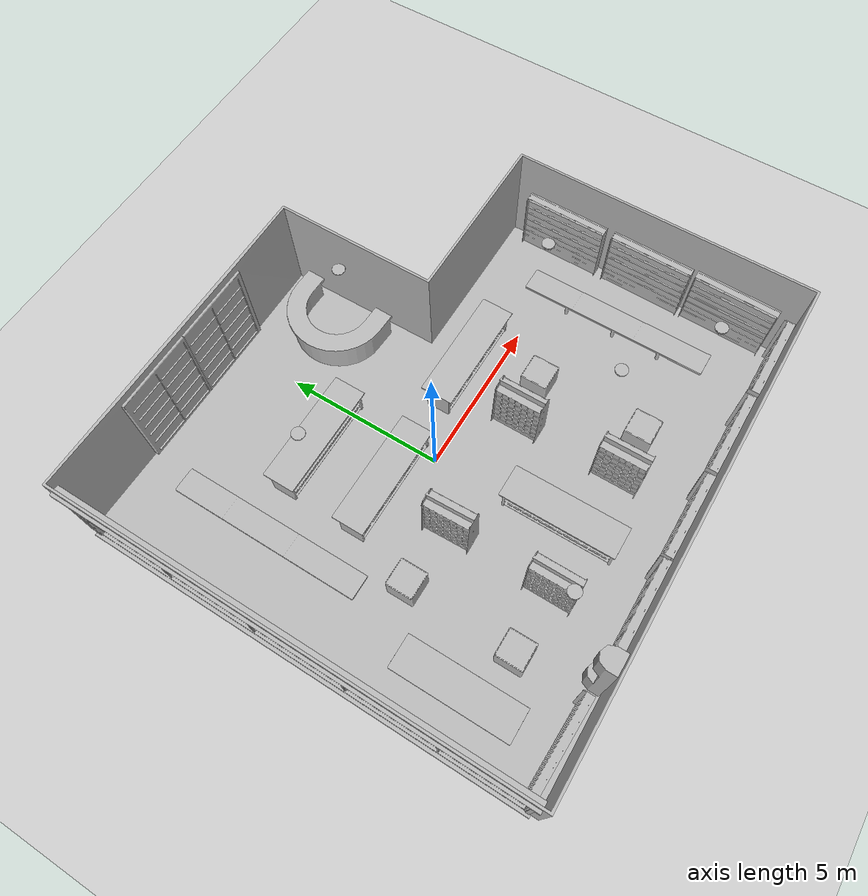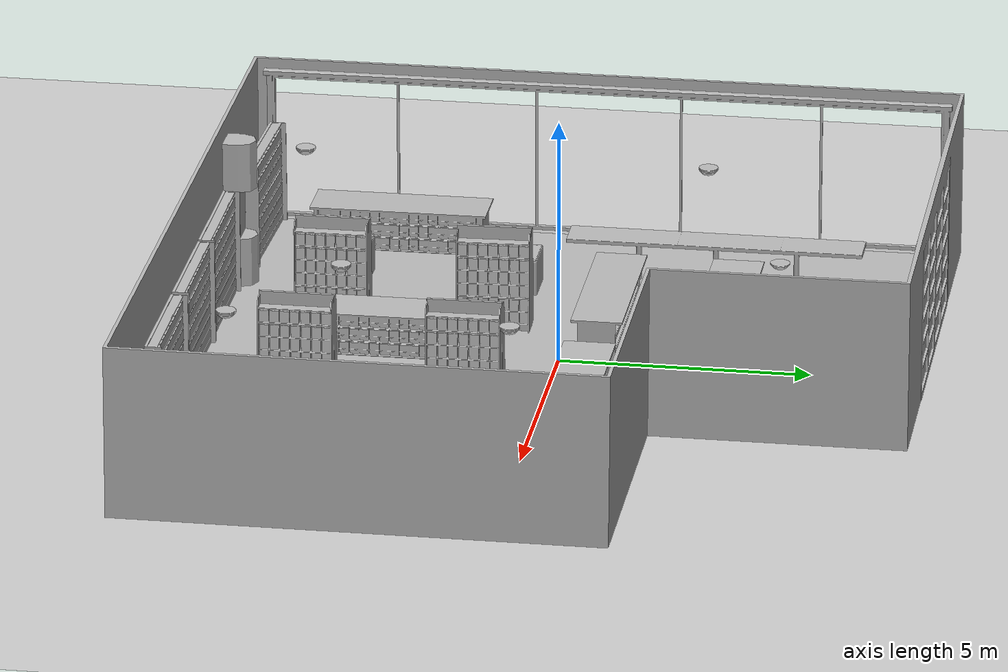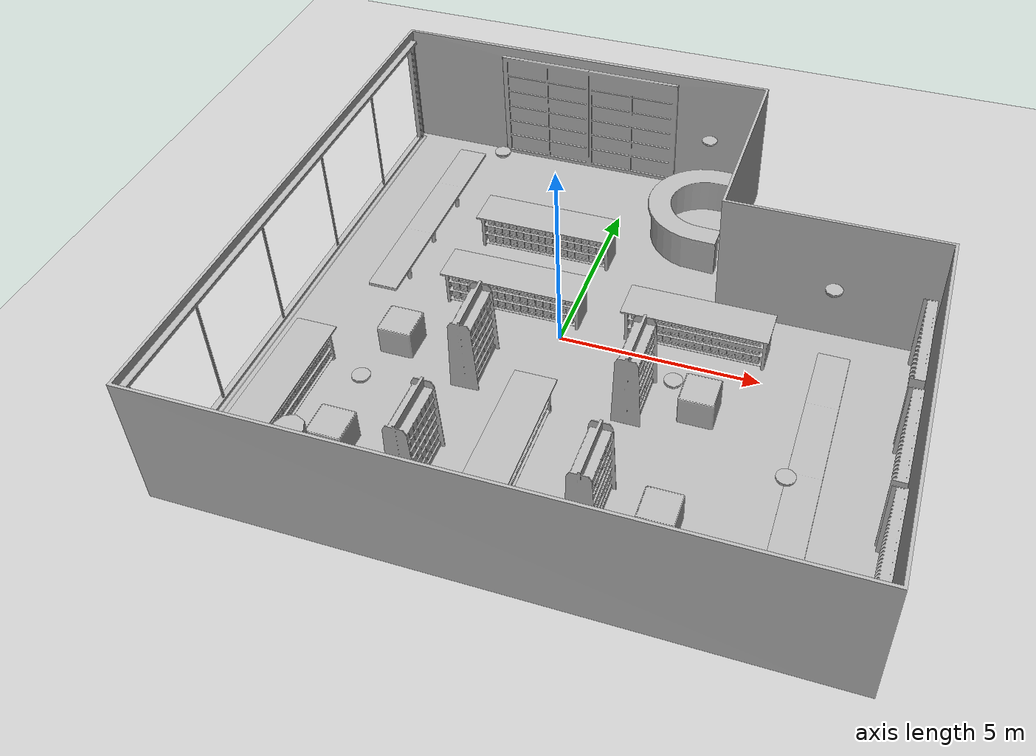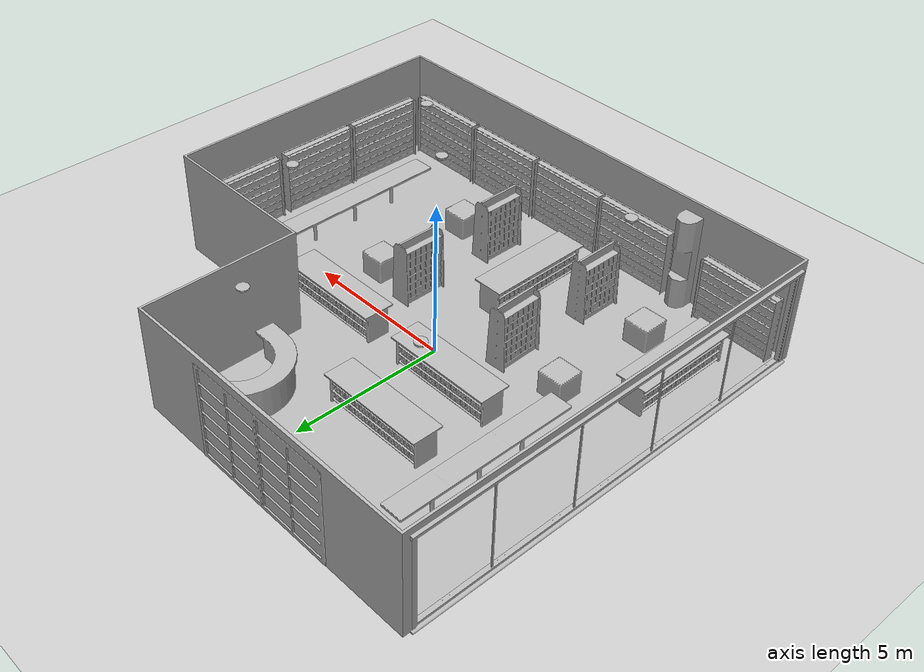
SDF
<sdf version="1.7">
 <world name="default">
  <light name="sun" type="directional">
   <pose>0 0 10 0 -0 0</pose>
   <diffuse>0.8 0.8 0.8 1</diffuse>
   <specular>0.2 0.2 0.2 1</specular>
   <attenuation>
    <range>1000</range>
    <constant>0.9</constant>
    <linear>0.01</linear>
    <quadratic>0.001</quadratic>
   </attenuation>
   <direction>-0.5 0.1 -0.9</direction>
   <spot><inner_angle>0</inner_angle><outer_angle>0</outer_angle><falloff>0</falloff></spot>
  </light>
  <model name="ground_plane">
   <static>1</static>
   <link name="link">
    <collision name="collision">
     <geometry><plane><normal>0 0 1</normal><size>100 100</size></plane></geometry>
     <surface><friction><ode><mu>100</mu><mu2>50</mu2></ode></friction></surface>
    </collision>
    <visual name="visual">
     <cast_shadows>0</cast_shadows>
     <geometry><plane><normal>0 0 1</normal><size>100 100</size></plane></geometry>
     <material>
      <script><uri>file://media/materials/scripts/gazebo.material</uri><name>Gazebo/Grey</name></script>
     </material>
    </visual>
   </link>
  </model>
  <gravity>0 0 -9.8</gravity>
  <magnetic_field>6e-06 2.3e-05 -4.2e-05</magnetic_field>
  <atmosphere type="adiabatic"/>
  <physics type="ode">
   <max_step_size>0.001</max_step_size>
   <real_time_factor>1</real_time_factor>
   <real_time_update_rate>1000</real_time_update_rate>
  </physics>
  <scene><ambient>0.4 0.4 0.4 1</ambient><background>0.7 0.7 0.7 1</background><shadows>1</shadows></scene>
  <audio><device>default</device></audio>
  <spherical_coordinates>
   <surface_model>EARTH_WGS84</surface_model>
   <latitude_deg>0</latitude_deg>
   <longitude_deg>0</longitude_deg>
   <elevation>0</elevation>
   <heading_deg>0</heading_deg>
  </spherical_coordinates>
  <model name="bookstore">
   <frame name="BookshelfA_01_001::__model__" attached_to="BookshelfA_01_001::link">
    <pose relative_to="__model__">1.40515 -1.44974 0.03755 0.00349 -3e-06 0.000696</pose>
   </frame>
   <link name="BookshelfA_01_001::link">
    <inertial>
     <mass>50</mass>
     <inertia><ixx>27.7341</ixx><ixy>0</ixy><ixz>0</ixz><iyy>20.9361</iyy><iyz>0</iyz><izz>11.3596</izz></inertia>
    </inertial>
    <collision name="collision">
     <geometry>
      <mesh>
       <uri>model://aws_robomaker_retail_BookshelfA_01/meshes/aws_BookshelfA_01_collision.DAE</uri>
       <scale>1 1 1</scale>
      </mesh>
     </geometry>
    </collision>
    <visual name="visual">
     <geometry>
      <mesh><uri>model://aws_robomaker_retail_BookshelfA_01/meshes/aws_BookshelfA_01_visual.DAE</uri></mesh>
     </geometry>
     <meta><layer>1</layer></meta>
    </visual>
    <pose relative_to="BookshelfA_01_001::__model__">0 0 0 0 -0 0</pose>
   </link>
   <static>1</static>
   <frame name="BookshelfA_01_002::__model__" attached_to="BookshelfA_01_002::link">
    <pose relative_to="__model__">1.40515 -4.76165 0.003411 0 -0 0</pose>
   </frame>
   <link name="BookshelfA_01_002::link">
    <inertial>
     <mass>50</mass>
     <inertia><ixx>27.7341</ixx><ixy>0</ixy><ixz>0</ixz><iyy>20.9361</iyy><iyz>0</iyz><izz>11.3596</izz></inertia>
    </inertial>
    <collision name="collision">
     <geometry>
      <mesh>
       <uri>model://aws_robomaker_retail_BookshelfA_01/meshes/aws_BookshelfA_01_collision.DAE</uri>
       <scale>1 1 1</scale>
      </mesh>
     </geometry>
    </collision>
    <visual name="visual">
     <geometry>
      <mesh><uri>model://aws_robomaker_retail_BookshelfA_01/meshes/aws_BookshelfA_01_visual.DAE</uri></mesh>
     </geometry>
     <meta><layer>1</layer></meta>
    </visual>
    <pose relative_to="BookshelfA_01_002::__model__">0 0 0 0 -0 0</pose>
   </link>
   <static>1</static>
   <frame name="BookshelfA_01_003::__model__" attached_to="BookshelfA_01_003::link">
    <pose relative_to="__model__">-2.55449 -1.48746 0.006337 0.001313 -0.001987 0.031824</pose>
   </frame>
   <link name="BookshelfA_01_003::link">
    <inertial>
     <mass>50</mass>
     <inertia><ixx>27.7341</ixx><ixy>0</ixy><ixz>0</ixz><iyy>20.9361</iyy><iyz>0</iyz><izz>11.3596</izz></inertia>
    </inertial>
    <collision name="collision">
     <geometry>
      <mesh>
       <uri>model://aws_robomaker_retail_BookshelfA_01/meshes/aws_BookshelfA_01_collision.DAE</uri>
       <scale>1 1 1</scale>
      </mesh>
     </geometry>
    </collision>
    <visual name="visual">
     <geometry>
      <mesh><uri>model://aws_robomaker_retail_BookshelfA_01/meshes/aws_BookshelfA_01_visual.DAE</uri></mesh>
     </geometry>
     <meta><layer>1</layer></meta>
    </visual>
    <pose relative_to="BookshelfA_01_003::__model__">0 0 0 0 -0 0</pose>
   </link>
   <static>1</static>
   <frame name="BookshelfA_01_004::__model__" attached_to="BookshelfA_01_004::link">
    <pose relative_to="__model__">-2.60858 -4.76165 0.003411 0 -0 0</pose>
   </frame>
   <link name="BookshelfA_01_004::link">
    <inertial>
     <mass>50</mass>
     <inertia><ixx>27.7341</ixx><ixy>0</ixy><ixz>0</ixz><iyy>20.9361</iyy><iyz>0</iyz><izz>11.3596</izz></inertia>
    </inertial>
    <collision name="collision">
     <geometry>
      <mesh>
       <uri>model://aws_robomaker_retail_BookshelfA_01/meshes/aws_BookshelfA_01_collision.DAE</uri>
       <scale>1 1 1</scale>
      </mesh>
     </geometry>
    </collision>
    <visual name="visual">
     <geometry>
      <mesh><uri>model://aws_robomaker_retail_BookshelfA_01/meshes/aws_BookshelfA_01_visual.DAE</uri></mesh>
     </geometry>
     <meta><layer>1</layer></meta>
    </visual>
    <pose relative_to="BookshelfA_01_004::__model__">0 0 0 0 -0 0</pose>
   </link>
   <static>1</static>
   <frame name="BookshelfB_01_001::__model__" attached_to="BookshelfB_01_001::link">
    <pose relative_to="__model__">-6.18968 -6.78565 -0.008942 0.003533 0.000121 -0.032073</pose>
   </frame>
   <link name="BookshelfB_01_001::link">
    <inertial>
     <mass>50</mass>
     <inertia><ixx>19.8742</ixx><ixy>0</ixy><ixz>0</ixz><iyy>49.1263</iyy><iyz>0</iyz><izz>30.2231</izz></inertia>
    </inertial>
    <collision name="collision">
     <geometry>
      <mesh>
       <uri>model://aws_robomaker_retail_BookshelfB_01/meshes/aws_BookshelfB_01_collision.DAE</uri>
       <scale>1 1 1</scale>
      </mesh>
     </geometry>
    </collision>
    <visual name="visual">
     <geometry>
      <mesh><uri>model://aws_robomaker_retail_BookshelfB_01/meshes/aws_BookshelfB_01_visual.DAE</uri></mesh>
     </geometry>
     <meta><layer>1</layer></meta>
    </visual>
    <pose relative_to="BookshelfB_01_001::__model__">0 0 0 0 -0 0</pose>
   </link>
   <static>1</static>
   <frame name="BookshelfB_01_002::__model__" attached_to="BookshelfB_01_002::link">
    <pose relative_to="__model__">-2.20941 -6.97146 0.017074 -0.000128 -0.000252 0.000364</pose>
   </frame>
   <link name="BookshelfB_01_002::link">
    <inertial>
     <mass>50</mass>
     <inertia><ixx>19.8742</ixx><ixy>0</ixy><ixz>0</ixz><iyy>49.1263</iyy><iyz>0</iyz><izz>30.2231</izz></inertia>
    </inertial>
    <collision name="collision">
     <geometry>
      <mesh>
       <uri>model://aws_robomaker_retail_BookshelfB_01/meshes/aws_BookshelfB_01_collision.DAE</uri>
       <scale>1 1 1</scale>
      </mesh>
     </geometry>
    </collision>
    <visual name="visual">
     <geometry>
      <mesh><uri>model://aws_robomaker_retail_BookshelfB_01/meshes/aws_BookshelfB_01_visual.DAE</uri></mesh>
     </geometry>
     <meta><layer>1</layer></meta>
    </visual>
    <pose relative_to="BookshelfB_01_002::__model__">0 0 0 0 -0 0</pose>
   </link>
   <static>1</static>
   <frame name="BookshelfB_01_003::__model__" attached_to="BookshelfB_01_003::link">
    <pose relative_to="__model__">0.522246 -6.9715 0.017947 -0.003292 0 0</pose>
   </frame>
   <link name="BookshelfB_01_003::link">
    <inertial>
     <mass>50</mass>
     <inertia><ixx>19.8742</ixx><ixy>0</ixy><ixz>0</ixz><iyy>49.1263</iyy><iyz>0</iyz><izz>30.2231</izz></inertia>
    </inertial>
    <collision name="collision">
     <geometry>
      <mesh>
       <uri>model://aws_robomaker_retail_BookshelfB_01/meshes/aws_BookshelfB_01_collision.DAE</uri>
       <scale>1 1 1</scale>
      </mesh>
     </geometry>
    </collision>
    <visual name="visual">
     <geometry>
      <mesh><uri>model://aws_robomaker_retail_BookshelfB_01/meshes/aws_BookshelfB_01_visual.DAE</uri></mesh>
     </geometry>
     <meta><layer>1</layer></meta>
    </visual>
    <pose relative_to="BookshelfB_01_003::__model__">0 0 0 0 -0 0</pose>
   </link>
   <static>1</static>
   <frame name="BookshelfB_01_004::__model__" attached_to="BookshelfB_01_004::link">
    <pose relative_to="__model__">3.29339 -6.96366 0.017383 8e-06 -2e-06 -0</pose>
   </frame>
   <link name="BookshelfB_01_004::link">
    <inertial>
     <mass>50</mass>
     <inertia><ixx>19.8742</ixx><ixy>0</ixy><ixz>0</ixz><iyy>49.1263</iyy><iyz>0</iyz><izz>30.2231</izz></inertia>
    </inertial>
    <collision name="collision">
     <geometry>
      <mesh>
       <uri>model://aws_robomaker_retail_BookshelfB_01/meshes/aws_BookshelfB_01_collision.DAE</uri>
       <scale>1 1 1</scale>
      </mesh>
     </geometry>
    </collision>
    <visual name="visual">
     <geometry>
      <mesh><uri>model://aws_robomaker_retail_BookshelfB_01/meshes/aws_BookshelfB_01_visual.DAE</uri></mesh>
     </geometry>
     <meta><layer>1</layer></meta>
    </visual>
    <pose relative_to="BookshelfB_01_004::__model__">0 0 0 0 -0 0</pose>
   </link>
   <static>1</static>
   <frame name="BookshelfB_01_005::__model__" attached_to="BookshelfB_01_005::link">
    <pose relative_to="__model__">6.08038 -6.98766 0.017409 0.000174 4e-06 0</pose>
   </frame>
   <link name="BookshelfB_01_005::link">
    <inertial>
     <mass>50</mass>
     <inertia><ixx>19.8742</ixx><ixy>0</ixy><ixz>0</ixz><iyy>49.1263</iyy><iyz>0</iyz><izz>30.2231</izz></inertia>
    </inertial>
    <collision name="collision">
     <geometry>
      <mesh>
       <uri>model://aws_robomaker_retail_BookshelfB_01/meshes/aws_BookshelfB_01_collision.DAE</uri>
       <scale>1 1 1</scale>
      </mesh>
     </geometry>
    </collision>
    <visual name="visual">
     <geometry>
      <mesh><uri>model://aws_robomaker_retail_BookshelfB_01/meshes/aws_BookshelfB_01_visual.DAE</uri></mesh>
     </geometry>
     <meta><layer>1</layer></meta>
    </visual>
    <pose relative_to="BookshelfB_01_005::__model__">0 0 0 0 -0 0</pose>
   </link>
   <static>1</static>
   <frame name="BookshelfB_01_006::__model__" attached_to="BookshelfB_01_006::link">
    <pose relative_to="__model__">7.47833 -5.2983 0.017443 -0.001974 -0.000211 1.55406</pose>
   </frame>
   <link name="BookshelfB_01_006::link">
    <inertial>
     <mass>50</mass>
     <inertia><ixx>19.8742</ixx><ixy>0</ixy><ixz>0</ixz><iyy>49.1263</iyy><iyz>0</iyz><izz>30.2231</izz></inertia>
    </inertial>
    <collision name="collision">
     <geometry>
      <mesh>
       <uri>model://aws_robomaker_retail_BookshelfB_01/meshes/aws_BookshelfB_01_collision.DAE</uri>
       <scale>1 1 1</scale>
      </mesh>
     </geometry>
    </collision>
    <visual name="visual">
     <geometry>
      <mesh><uri>model://aws_robomaker_retail_BookshelfB_01/meshes/aws_BookshelfB_01_visual.DAE</uri></mesh>
     </geometry>
     <meta><layer>1</layer></meta>
    </visual>
    <pose relative_to="BookshelfB_01_006::__model__">0 0 0 0 -0 0</pose>
   </link>
   <static>1</static>
   <frame name="BookshelfB_01_007::__model__" attached_to="BookshelfB_01_007::link">
    <pose relative_to="__model__">7.47833 -2.51065 0.017402 1e-05 -1.3e-05 1.56207</pose>
   </frame>
   <link name="BookshelfB_01_007::link">
    <inertial>
     <mass>50</mass>
     <inertia><ixx>19.8742</ixx><ixy>0</ixy><ixz>0</ixz><iyy>49.1263</iyy><iyz>0</iyz><izz>30.2231</izz></inertia>
    </inertial>
    <collision name="collision">
     <geometry>
      <mesh>
       <uri>model://aws_robomaker_retail_BookshelfB_01/meshes/aws_BookshelfB_01_collision.DAE</uri>
       <scale>1 1 1</scale>
      </mesh>
     </geometry>
    </collision>
    <visual name="visual">
     <geometry>
      <mesh><uri>model://aws_robomaker_retail_BookshelfB_01/meshes/aws_BookshelfB_01_visual.DAE</uri></mesh>
     </geometry>
     <meta><layer>1</layer></meta>
    </visual>
    <pose relative_to="BookshelfB_01_007::__model__">0 0 0 0 -0 0</pose>
   </link>
   <static>1</static>
   <frame name="BookshelfB_01_008::__model__" attached_to="BookshelfB_01_008::link">
    <pose relative_to="__model__">7.47833 0.402539 0.017181 3e-06 -0.000156 1.5708</pose>
   </frame>
   <link name="BookshelfB_01_008::link">
    <inertial>
     <mass>50</mass>
     <inertia><ixx>19.8742</ixx><ixy>0</ixy><ixz>0</ixz><iyy>49.1263</iyy><iyz>0</iyz><izz>30.2231</izz></inertia>
    </inertial>
    <collision name="collision">
     <geometry>
      <mesh>
       <uri>model://aws_robomaker_retail_BookshelfB_01/meshes/aws_BookshelfB_01_collision.DAE</uri>
       <scale>1 1 1</scale>
      </mesh>
     </geometry>
    </collision>
    <visual name="visual">
     <geometry>
      <mesh><uri>model://aws_robomaker_retail_BookshelfB_01/meshes/aws_BookshelfB_01_visual.DAE</uri></mesh>
     </geometry>
     <meta><layer>1</layer></meta>
    </visual>
    <pose relative_to="BookshelfB_01_008::__model__">0 0 0 0 -0 0</pose>
   </link>
   <static>1</static>
   <frame name="BookshelfC_01_001::__model__" attached_to="BookshelfC_01_001::link">
    <pose relative_to="__model__">2.91113 -1.31023 0.008469 0.003452 -3e-06 0.00062</pose>
   </frame>
   <link name="BookshelfC_01_001::link">
    <inertial>
     <mass>50</mass>
     <inertia><ixx>5.5865</ixx><ixy>0</ixy><ixz>0</ixz><iyy>5.47324</iyy><iyz>0</iyz><izz>6.23277</izz></inertia>
    </inertial>
    <collision name="collision">
     <geometry>
      <mesh>
       <uri>model://aws_robomaker_retail_BookshelfC_01/meshes/aws_BookshelfC_01_collision.DAE</uri>
       <scale>1 1 1</scale>
      </mesh>
     </geometry>
    </collision>
    <visual name="visual">
     <geometry>
      <mesh><uri>model://aws_robomaker_retail_BookshelfC_01/meshes/aws_BookshelfC_01_visual.DAE</uri></mesh>
     </geometry>
     <meta><layer>1</layer></meta>
    </visual>
    <pose relative_to="BookshelfC_01_001::__model__">0 0 0 0 -0 0</pose>
   </link>
   <static>1</static>
   <frame name="BookshelfC_01_002::__model__" attached_to="BookshelfC_01_002::link">
    <pose relative_to="__model__">2.91545 -4.76171 -0.003455 0.003452 -0 1.4e-05</pose>
   </frame>
   <link name="BookshelfC_01_002::link">
    <inertial>
     <mass>50</mass>
     <inertia><ixx>5.5865</ixx><ixy>0</ixy><ixz>0</ixz><iyy>5.47324</iyy><iyz>0</iyz><izz>6.23277</izz></inertia>
    </inertial>
    <collision name="collision">
     <geometry>
      <mesh>
       <uri>model://aws_robomaker_retail_BookshelfC_01/meshes/aws_BookshelfC_01_collision.DAE</uri>
       <scale>1 1 1</scale>
      </mesh>
     </geometry>
    </collision>
    <visual name="visual">
     <geometry>
      <mesh><uri>model://aws_robomaker_retail_BookshelfC_01/meshes/aws_BookshelfC_01_visual.DAE</uri></mesh>
     </geometry>
     <meta><layer>1</layer></meta>
    </visual>
    <pose relative_to="BookshelfC_01_002::__model__">0 0 0 0 -0 0</pose>
   </link>
   <static>1</static>
   <frame name="BookshelfC_01_003::__model__" attached_to="BookshelfC_01_003::link">
    <pose relative_to="__model__">-4.51711 -1.31023 0.045908 0 -0 0</pose>
   </frame>
   <link name="BookshelfC_01_003::link">
    <inertial>
     <mass>50</mass>
     <inertia><ixx>5.5865</ixx><ixy>0</ixy><ixz>0</ixz><iyy>5.47324</iyy><iyz>0</iyz><izz>6.23277</izz></inertia>
    </inertial>
    <collision name="collision">
     <geometry>
      <mesh>
       <uri>model://aws_robomaker_retail_BookshelfC_01/meshes/aws_BookshelfC_01_collision.DAE</uri>
       <scale>1 1 1</scale>
      </mesh>
     </geometry>
    </collision>
    <visual name="visual">
     <geometry>
      <mesh><uri>model://aws_robomaker_retail_BookshelfC_01/meshes/aws_BookshelfC_01_visual.DAE</uri></mesh>
     </geometry>
     <meta><layer>1</layer></meta>
    </visual>
    <pose relative_to="BookshelfC_01_003::__model__">0 0 0 0 -0 0</pose>
   </link>
   <static>1</static>
   <frame name="BookshelfC_01_004::__model__" attached_to="BookshelfC_01_004::link">
    <pose relative_to="__model__">-4.61436 -4.76165 0.045908 0 -0 0</pose>
   </frame>
   <link name="BookshelfC_01_004::link">
    <inertial>
     <mass>50</mass>
     <inertia><ixx>5.5865</ixx><ixy>0</ixy><ixz>0</ixz><iyy>5.47324</iyy><iyz>0</iyz><izz>6.23277</izz></inertia>
    </inertial>
    <collision name="collision">
     <geometry>
      <mesh>
       <uri>model://aws_robomaker_retail_BookshelfC_01/meshes/aws_BookshelfC_01_collision.DAE</uri>
       <scale>1 1 1</scale>
      </mesh>
     </geometry>
    </collision>
    <visual name="visual">
     <geometry>
      <mesh><uri>model://aws_robomaker_retail_BookshelfC_01/meshes/aws_BookshelfC_01_visual.DAE</uri></mesh>
     </geometry>
     <meta><layer>1</layer></meta>
    </visual>
    <pose relative_to="BookshelfC_01_004::__model__">0 0 0 0 -0 0</pose>
   </link>
   <static>1</static>
   <frame name="ColumnB_01_002::__model__" attached_to="ColumnB_01_002::link">
    <pose relative_to="__model__">-4.07623 -6.86071 0.017511 0.001895 -0.000628 -0.003755</pose>
   </frame>
   <link name="ColumnB_01_002::link">
    <inertial>
     <mass>50</mass>
     <inertia><ixx>44.5597</ixx><ixy>0</ixy><ixz>0</ixz><iyy>44.5597</iyy><iyz>0</iyz><izz>1.87942</izz></inertia>
    </inertial>
    <collision name="collision">
     <geometry>
      <mesh>
       <uri>model://aws_robomaker_retail_ColumnB_01/meshes/aws_ColumnB_01_collision.DAE</uri>
       <scale>1 1 1</scale>
      </mesh>
     </geometry>
    </collision>
    <visual name="visual">
     <geometry>
      <mesh><uri>model://aws_robomaker_retail_ColumnB_01/meshes/aws_ColumnB_01_visual.DAE</uri></mesh>
     </geometry>
     <meta><layer>1</layer></meta>
    </visual>
    <pose relative_to="ColumnB_01_002::__model__">0 0 0 0 -0 0</pose>
   </link>
   <static>1</static>
   <frame name="InfoDesk_01_001::__model__" attached_to="InfoDesk_01_001::link">
    <pose relative_to="__model__">1.01067 5.03258 0.011585 -0.006739 0.00511 -0.025146</pose>
   </frame>
   <link name="InfoDesk_01_001::link">
    <inertial>
     <mass>50</mass>
     <inertia><ixx>47.8386</ixx><ixy>0</ixy><ixz>0</ixz><iyy>25.3705</iyy><iyz>0</iyz><izz>63.5798</izz></inertia>
    </inertial>
    <collision name="collision">
     <geometry>
      <mesh>
       <uri>model://aws_robomaker_retail_InfoDesk_01/meshes/aws_InfoDesk_01_collision.DAE</uri>
       <scale>1 1 1</scale>
      </mesh>
     </geometry>
    </collision>
    <visual name="visual">
     <geometry>
      <mesh><uri>model://aws_robomaker_retail_InfoDesk_01/meshes/aws_InfoDesk_01_visual.DAE</uri></mesh>
     </geometry>
     <meta><layer>1</layer></meta>
    </visual>
    <pose relative_to="InfoDesk_01_001::__model__">0 0 0 0 -0 0</pose>
   </link>
   <static>1</static>
   <frame name="DeskB_01_001::__model__" attached_to="DeskB_01_001::link">
    <pose relative_to="__model__">5.62294 -2.47542 -0.181282 0 -0 0</pose>
   </frame>
   <link name="DeskB_01_001::link">
    <inertial>
     <mass>50</mass>
     <inertia><ixx>154.884</ixx><ixy>0</ixy><ixz>0</ixz><iyy>7.48424</iyy><iyz>0</iyz><izz>152.099</izz></inertia>
    </inertial>
    <collision name="collision">
     <geometry>
      <mesh>
       <uri>model://aws_robomaker_retail_DeskB_01/meshes/aws_DeskB_01_collision.DAE</uri>
       <scale>1 1 1</scale>
      </mesh>
     </geometry>
    </collision>
    <visual name="visual">
     <geometry>
      <mesh><uri>model://aws_robomaker_retail_DeskB_01/meshes/aws_DeskB_01_visual.DAE</uri></mesh>
     </geometry>
     <meta><layer>1</layer></meta>
    </visual>
    <pose relative_to="DeskB_01_001::__model__">0 0 0 0 -0 0</pose>
   </link>
   <static>1</static>
   <frame name="DeskB_01_002::__model__" attached_to="DeskB_01_002::link">
    <pose relative_to="__model__">-5.40071 2.58054 -0.181282 0 -0 0</pose>
   </frame>
   <link name="DeskB_01_002::link">
    <inertial>
     <mass>50</mass>
     <inertia><ixx>154.884</ixx><ixy>0</ixy><ixz>0</ixz><iyy>7.48424</iyy><iyz>0</iyz><izz>152.099</izz></inertia>
    </inertial>
    <collision name="collision">
     <geometry>
      <mesh>
       <uri>model://aws_robomaker_retail_DeskB_01/meshes/aws_DeskB_01_collision.DAE</uri>
       <scale>1 1 1</scale>
      </mesh>
     </geometry>
    </collision>
    <visual name="visual">
     <geometry>
      <mesh><uri>model://aws_robomaker_retail_DeskB_01/meshes/aws_DeskB_01_visual.DAE</uri></mesh>
     </geometry>
     <meta><layer>1</layer></meta>
    </visual>
    <pose relative_to="DeskB_01_002::__model__">0 0 0 0 -0 0</pose>
   </link>
   <static>1</static>
   <frame name="DeskA_01_001::__model__" attached_to="DeskA_01_001::link">
    <pose relative_to="__model__">-2.34069 3.20012 0.014921 0.000124 -1e-05 0.000376</pose>
   </frame>
   <link name="DeskA_01_001::link">
    <inertial>
     <mass>20</mass>
     <inertia><ixx>3.49717</ixx><ixy>0</ixy><ixz>0</ixz><iyy>23.5599</iyy><iyz>0</iyz><izz>23.5702</izz></inertia>
    </inertial>
    <collision name="collision">
     <geometry>
      <mesh>
       <uri>model://aws_robomaker_retail_DeskA_01/meshes/aws_DeskA_01_collision.DAE</uri>
       <scale>1 1 1</scale>
      </mesh>
     </geometry>
    </collision>
    <visual name="visual">
     <geometry>
      <mesh><uri>model://aws_robomaker_retail_DeskA_01/meshes/aws_DeskA_01_visual.DAE</uri></mesh>
     </geometry>
     <meta><layer>1</layer></meta>
    </visual>
    <pose relative_to="DeskA_01_001::__model__">0 0 0 0 -0 0</pose>
   </link>
   <static>1</static>
   <frame name="DeskA_01_002::__model__" attached_to="DeskA_01_002::link">
    <pose relative_to="__model__">-2.36994 0.836099 0.00876 -0.000772 -0.001938 1.7e-05</pose>
   </frame>
   <link name="DeskA_01_002::link">
    <inertial>
     <mass>20</mass>
     <inertia><ixx>3.49717</ixx><ixy>0</ixy><ixz>0</ixz><iyy>23.5599</iyy><iyz>0</iyz><izz>23.5702</izz></inertia>
    </inertial>
    <collision name="collision">
     <geometry>
      <mesh>
       <uri>model://aws_robomaker_retail_DeskA_01/meshes/aws_DeskA_01_collision.DAE</uri>
       <scale>1 1 1</scale>
      </mesh>
     </geometry>
    </collision>
    <visual name="visual">
     <geometry>
      <mesh><uri>model://aws_robomaker_retail_DeskA_01/meshes/aws_DeskA_01_visual.DAE</uri></mesh>
     </geometry>
     <meta><layer>1</layer></meta>
    </visual>
    <pose relative_to="DeskA_01_002::__model__">0 0 0 0 -0 0</pose>
   </link>
   <static>1</static>
   <frame name="DeskA_01_003::__model__" attached_to="DeskA_01_003::link">
    <pose relative_to="__model__">-6.25465 -3.9792 -0.004603 0.001948 0.001361 -1.56957</pose>
   </frame>
   <link name="DeskA_01_003::link">
    <inertial>
     <mass>20</mass>
     <inertia><ixx>3.49717</ixx><ixy>0</ixy><ixz>0</ixz><iyy>23.5599</iyy><iyz>0</iyz><izz>23.5702</izz></inertia>
    </inertial>
    <collision name="collision">
     <geometry>
      <mesh>
       <uri>model://aws_robomaker_retail_DeskA_01/meshes/aws_DeskA_01_collision.DAE</uri>
       <scale>1 1 1</scale>
      </mesh>
     </geometry>
    </collision>
    <visual name="visual">
     <geometry>
      <mesh><uri>model://aws_robomaker_retail_DeskA_01/meshes/aws_DeskA_01_visual.DAE</uri></mesh>
     </geometry>
     <meta><layer>1</layer></meta>
    </visual>
    <pose relative_to="DeskA_01_003::__model__">0 0 0 0 -0 0</pose>
   </link>
   <static>1</static>
   <frame name="DeskA_01_004::__model__" attached_to="DeskA_01_004::link">
    <pose relative_to="__model__">-0.701688 -4.04929 0.014866 0 -0 -1.5661</pose>
   </frame>
   <link name="DeskA_01_004::link">
    <inertial>
     <mass>20</mass>
     <inertia><ixx>3.49717</ixx><ixy>0</ixy><ixz>0</ixz><iyy>23.5599</iyy><iyz>0</iyz><izz>23.5702</izz></inertia>
    </inertial>
    <collision name="collision">
     <geometry>
      <mesh>
       <uri>model://aws_robomaker_retail_DeskA_01/meshes/aws_DeskA_01_collision.DAE</uri>
       <scale>1 1 1</scale>
      </mesh>
     </geometry>
    </collision>
    <visual name="visual">
     <geometry>
      <mesh><uri>model://aws_robomaker_retail_DeskA_01/meshes/aws_DeskA_01_visual.DAE</uri></mesh>
     </geometry>
     <meta><layer>1</layer></meta>
    </visual>
    <pose relative_to="DeskA_01_004::__model__">0 0 0 0 -0 0</pose>
   </link>
   <static>1</static>
   <frame name="DeskA_01_005::__model__" attached_to="DeskA_01_005::link">
    <pose relative_to="__model__">2.2982 0.861754 0.014883 -2e-06 0.003451 2.4e-05</pose>
   </frame>
   <link name="DeskA_01_005::link">
    <inertial>
     <mass>20</mass>
     <inertia><ixx>3.49717</ixx><ixy>0</ixy><ixz>0</ixz><iyy>23.5599</iyy><iyz>0</iyz><izz>23.5702</izz></inertia>
    </inertial>
    <collision name="collision">
     <geometry>
      <mesh>
       <uri>model://aws_robomaker_retail_DeskA_01/meshes/aws_DeskA_01_collision.DAE</uri>
       <scale>1 1 1</scale>
      </mesh>
     </geometry>
    </collision>
    <visual name="visual">
     <geometry>
      <mesh><uri>model://aws_robomaker_retail_DeskA_01/meshes/aws_DeskA_01_visual.DAE</uri></mesh>
     </geometry>
     <meta><layer>1</layer></meta>
    </visual>
    <pose relative_to="DeskA_01_005::__model__">0 0 0 0 -0 0</pose>
   </link>
   <static>1</static>
   <frame name="DoorB_01_001::__model__" attached_to="DoorB_01_001::link">
    <pose relative_to="__model__">-2.49246 7.21937 -0.035203 0 -0 0</pose>
   </frame>
   <link name="DoorB_01_001::link">
    <inertial>
     <mass>50</mass>
     <inertia><ixx>44.5597</ixx><ixy>0</ixy><ixz>0</ixz><iyy>151.699</iyy><iyz>0</iyz><izz>107.806</izz></inertia>
    </inertial>
    <collision name="collision">
     <geometry>
      <mesh>
       <uri>model://aws_robomaker_retail_DoorB_01/meshes/aws_DoorB_01_collision.DAE</uri>
       <scale>1 1 1</scale>
      </mesh>
     </geometry>
    </collision>
    <visual name="visual">
     <geometry>
      <mesh><uri>model://aws_robomaker_retail_DoorB_01/meshes/aws_DoorB_01_visual.DAE</uri></mesh>
     </geometry>
     <meta><layer>2</layer></meta>
    </visual>
    <pose relative_to="DoorB_01_001::__model__">0 0 0 0 -0 0</pose>
   </link>
   <static>1</static>
   <frame name="RetailShopFloor_01_001::__model__" attached_to="RetailShopFloor_01_001::link">
    <pose relative_to="__model__">-0.002687 0 -0.276618 0 -0 0</pose>
   </frame>
   <link name="RetailShopFloor_01_001::link">
    <inertial><mass>100</mass></inertial>
    <collision name="collision">
     <geometry>
      <mesh>
       <uri>model://aws_robomaker_retail_RetailShopFloor_01/meshes/aws_RetailShopFloor_01_collision.DAE</uri>
       <scale>1 1 1</scale>
      </mesh>
     </geometry>
    </collision>
    <visual name="visual">
     <geometry>
      <mesh>
       <uri>model://aws_robomaker_retail_RetailShopFloor_01/meshes/aws_RetailShopFloor_01_visual.DAE</uri>
      </mesh>
     </geometry>
     <meta><layer>1</layer></meta>
    </visual>
    <pose relative_to="RetailShopFloor_01_001::__model__">0 0 0 0 -0 0</pose>
   </link>
   <static>1</static>
   <frame name="RetailShopWall_01_001::__model__" attached_to="RetailShopWall_01_001::link">
    <pose relative_to="__model__">0 0 -0.281282 0 -0 0</pose>
   </frame>
   <link name="RetailShopWall_01_001::link">
    <inertial><mass>1</mass></inertial>
    <collision name="collision">
     <geometry>
      <mesh>
       <uri>model://aws_robomaker_retail_RetailShopWall_01/meshes/aws_RetailShopWall_01_collision.DAE</uri>
       <scale>1 1 1</scale>
      </mesh>
     </geometry>
    </collision>
    <visual name="visual">
     <geometry>
      <mesh><uri>model://aws_robomaker_retail_RetailShopWall_01/meshes/aws_RetailShopWall_01_visual.DAE</uri></mesh>
     </geometry>
     <meta><layer>2</layer></meta>
    </visual>
    <pose relative_to="RetailShopWall_01_001::__model__">0 0 0 0 -0 0</pose>
   </link>
   <static>1</static>
   <frame name="LightA_01_001::__model__" attached_to="LightA_01_001::link">
    <pose relative_to="__model__">2.77442 -3.62815 3.15033 0 -0 0</pose>
   </frame>
   <link name="LightA_01_001::link">
    <inertial><mass>1</mass></inertial>
    <collision name="collision">
     <geometry>
      <mesh>
       <uri>model://aws_robomaker_retail_LightA_01/meshes/aws_LightA_01_collision.DAE</uri>
       <scale>1 1 1</scale>
      </mesh>
     </geometry>
    </collision>
    <visual name="visual">
     <geometry>
      <mesh><uri>model://aws_robomaker_retail_LightA_01/meshes/aws_LightA_01_visual.DAE</uri></mesh>
     </geometry>
     <meta><layer>3</layer></meta>
    </visual>
    <pose relative_to="LightA_01_001::__model__">0 0 0 0 -0 0</pose>
   </link>
   <static>1</static>
   <frame name="LightA_01_002::__model__" attached_to="LightA_01_002::link">
    <pose relative_to="__model__">5.38399 -5.38371 3.15033 0 -0 0</pose>
   </frame>
   <link name="LightA_01_002::link">
    <inertial><mass>1</mass></inertial>
    <collision name="collision">
     <geometry>
      <mesh>
       <uri>model://aws_robomaker_retail_LightA_01/meshes/aws_LightA_01_collision.DAE</uri>
       <scale>1 1 1</scale>
      </mesh>
     </geometry>
    </collision>
    <visual name="visual">
     <geometry>
      <mesh><uri>model://aws_robomaker_retail_LightA_01/meshes/aws_LightA_01_visual.DAE</uri></mesh>
     </geometry>
     <meta><layer>3</layer></meta>
    </visual>
    <pose relative_to="LightA_01_002::__model__">0 0 0 0 -0 0</pose>
   </link>
   <static>1</static>
   <frame name="LightA_01_003::__model__" attached_to="LightA_01_003::link">
    <pose relative_to="__model__">5.38399 0.04192 3.15033 0 -0 0</pose>
   </frame>
   <link name="LightA_01_003::link">
    <inertial><mass>1</mass></inertial>
    <collision name="collision">
     <geometry>
      <mesh>
       <uri>model://aws_robomaker_retail_LightA_01/meshes/aws_LightA_01_collision.DAE</uri>
       <scale>1 1 1</scale>
      </mesh>
     </geometry>
    </collision>
    <visual name="visual">
     <geometry>
      <mesh><uri>model://aws_robomaker_retail_LightA_01/meshes/aws_LightA_01_visual.DAE</uri></mesh>
     </geometry>
     <meta><layer>3</layer></meta>
    </visual>
    <pose relative_to="LightA_01_003::__model__">0 0 0 0 -0 0</pose>
   </link>
   <static>1</static>
   <frame name="LightA_01_004::__model__" attached_to="LightA_01_004::link">
    <pose relative_to="__model__">-3.21067 -5.38371 3.15033 0 -0 0</pose>
   </frame>
   <link name="LightA_01_004::link">
    <inertial><mass>1</mass></inertial>
    <collision name="collision">
     <geometry>
      <mesh>
       <uri>model://aws_robomaker_retail_LightA_01/meshes/aws_LightA_01_collision.DAE</uri>
       <scale>1 1 1</scale>
      </mesh>
     </geometry>
    </collision>
    <visual name="visual">
     <geometry>
      <mesh><uri>model://aws_robomaker_retail_LightA_01/meshes/aws_LightA_01_visual.DAE</uri></mesh>
     </geometry>
     <meta><layer>3</layer></meta>
    </visual>
    <pose relative_to="LightA_01_004::__model__">0 0 0 0 -0 0</pose>
   </link>
   <static>1</static>
   <frame name="LightA_01_005::__model__" attached_to="LightA_01_005::link">
    <pose relative_to="__model__">-3.271 2.68593 3.15033 0 -0 0</pose>
   </frame>
   <link name="LightA_01_005::link">
    <inertial><mass>1</mass></inertial>
    <collision name="collision">
     <geometry>
      <mesh>
       <uri>model://aws_robomaker_retail_LightA_01/meshes/aws_LightA_01_collision.DAE</uri>
       <scale>1 1 1</scale>
      </mesh>
     </geometry>
    </collision>
    <visual name="visual">
     <geometry>
      <mesh><uri>model://aws_robomaker_retail_LightA_01/meshes/aws_LightA_01_visual.DAE</uri></mesh>
     </geometry>
     <meta><layer>3</layer></meta>
    </visual>
    <pose relative_to="LightA_01_005::__model__">0 0 0 0 -0 0</pose>
   </link>
   <static>1</static>
   <frame name="Spotlight_01_001::__model__" attached_to="Spotlight_01_001::link">
    <pose relative_to="__model__">1.4932 4.69237 3.30266 0 -0 0</pose>
   </frame>
   <link name="Spotlight_01_001::link">
    <inertial><mass>1</mass></inertial>
    <collision name="collision">
     <geometry>
      <mesh>
       <uri>model://aws_robomaker_retail_Spotlight_01/meshes/aws_Spotlight_01_collision.DAE</uri>
       <scale>1 1 1</scale>
      </mesh>
     </geometry>
    </collision>
    <visual name="visual">
     <geometry>
      <mesh><uri>model://aws_robomaker_retail_Spotlight_01/meshes/aws_Spotlight_01_visual.DAE</uri></mesh>
     </geometry>
     <meta><layer>3</layer></meta>
    </visual>
    <pose relative_to="Spotlight_01_001::__model__">0 0 0 0 -0 0</pose>
   </link>
   <static>1</static>
   <frame name="ShopWindow_01_001::__model__" attached_to="ShopWindow_01_001::link">
    <pose relative_to="__model__">-7.73816 0.01596 -0.180092 0 -0 0</pose>
   </frame>
   <link name="ShopWindow_01_001::link">
    <inertial><mass>1</mass></inertial>
    <collision name="collision">
     <geometry>
      <mesh>
       <uri>model://aws_robomaker_retail_ShopWindow_01/meshes/aws_ShopWindow_01_collision.DAE</uri>
       <scale>1 1 1</scale>
      </mesh>
     </geometry>
    </collision>
    <visual name="visual">
     <geometry>
      <mesh><uri>model://aws_robomaker_retail_ShopWindow_01/meshes/aws_ShopWindow_01_visual.DAE</uri></mesh>
     </geometry>
    </visual>
    <pose relative_to="ShopWindow_01_001::__model__">0 0 0 0 -0 0</pose>
   </link>
   <static>1</static>
   <frame name="RetailShop_CeilingLight_001::__model__" attached_to="RetailShop_CeilingLight_001::link">
    <pose relative_to="__model__">2.77442 -3.62815 3.17847 0 -0 0</pose>
   </frame>
   <link name="RetailShop_CeilingLight_001::link">
    <inertial><mass>1</mass></inertial>
    <collision name="collision">
     <geometry>
      <mesh>
       <uri>model://aws_robomaker_retail_LightA_01/meshes/aws_LightA_01_collision.DAE</uri>
       <scale>1 1 1</scale>
      </mesh>
     </geometry>
    </collision>
    <visual name="visual">
     <geometry>
      <mesh><uri>model://aws_robomaker_retail_LightA_01/meshes/aws_LightA_01_visual.DAE</uri></mesh>
     </geometry>
     <meta><layer>3</layer></meta>
    </visual>
    <pose relative_to="RetailShop_CeilingLight_001::__model__">0 0 0 0 -0 0</pose>
   </link>
   <static>1</static>
   <frame name="RetailShop_CeilingLight_002::__model__" attached_to="RetailShop_CeilingLight_002::link">
    <pose relative_to="__model__">5.38399 -5.38371 3.17847 0 -0 0</pose>
   </frame>
   <link name="RetailShop_CeilingLight_002::link">
    <inertial><mass>1</mass></inertial>
    <collision name="collision">
     <geometry>
      <mesh>
       <uri>model://aws_robomaker_retail_LightA_01/meshes/aws_LightA_01_collision.DAE</uri>
       <scale>1 1 1</scale>
      </mesh>
     </geometry>
    </collision>
    <visual name="visual">
     <geometry>
      <mesh><uri>model://aws_robomaker_retail_LightA_01/meshes/aws_LightA_01_visual.DAE</uri></mesh>
     </geometry>
     <meta><layer>3</layer></meta>
    </visual>
    <pose relative_to="RetailShop_CeilingLight_002::__model__">0 0 0 0 -0 0</pose>
   </link>
   <static>1</static>
   <frame name="RetailShop_CeilingLight_003::__model__" attached_to="RetailShop_CeilingLight_003::link">
    <pose relative_to="__model__">5.38399 0.04192 3.17847 0 -0 0</pose>
   </frame>
   <link name="RetailShop_CeilingLight_003::link">
    <inertial><mass>1</mass></inertial>
    <collision name="collision">
     <geometry>
      <mesh>
       <uri>model://aws_robomaker_retail_LightA_01/meshes/aws_LightA_01_collision.DAE</uri>
       <scale>1 1 1</scale>
      </mesh>
     </geometry>
    </collision>
    <visual name="visual">
     <geometry>
      <mesh><uri>model://aws_robomaker_retail_LightA_01/meshes/aws_LightA_01_visual.DAE</uri></mesh>
     </geometry>
     <meta><layer>3</layer></meta>
    </visual>
    <pose relative_to="RetailShop_CeilingLight_003::__model__">0 0 0 0 -0 0</pose>
   </link>
   <static>1</static>
   <frame name="RetailShop_CeilingLight_004::__model__" attached_to="RetailShop_CeilingLight_004::link">
    <pose relative_to="__model__">-3.21067 -5.38371 3.17847 0 -0 0</pose>
   </frame>
   <link name="RetailShop_CeilingLight_004::link">
    <inertial><mass>1</mass></inertial>
    <collision name="collision">
     <geometry>
      <mesh>
       <uri>model://aws_robomaker_retail_LightA_01/meshes/aws_LightA_01_collision.DAE</uri>
       <scale>1 1 1</scale>
      </mesh>
     </geometry>
    </collision>
    <visual name="visual">
     <geometry>
      <mesh><uri>model://aws_robomaker_retail_LightA_01/meshes/aws_LightA_01_visual.DAE</uri></mesh>
     </geometry>
     <meta><layer>3</layer></meta>
    </visual>
    <pose relative_to="RetailShop_CeilingLight_004::__model__">0 0 0 0 -0 0</pose>
   </link>
   <static>1</static>
   <frame name="RetailShop_CeilingLight_005::__model__" attached_to="RetailShop_CeilingLight_005::link">
    <pose relative_to="__model__">-3.271 2.68593 3.17847 0 -0 0</pose>
   </frame>
   <link name="RetailShop_CeilingLight_005::link">
    <inertial><mass>1</mass></inertial>
    <collision name="collision">
     <geometry>
      <mesh>
       <uri>model://aws_robomaker_retail_LightA_01/meshes/aws_LightA_01_collision.DAE</uri>
       <scale>1 1 1</scale>
      </mesh>
     </geometry>
    </collision>
    <visual name="visual">
     <geometry>
      <mesh><uri>model://aws_robomaker_retail_LightA_01/meshes/aws_LightA_01_visual.DAE</uri></mesh>
     </geometry>
     <meta><layer>3</layer></meta>
    </visual>
    <pose relative_to="RetailShop_CeilingLight_005::__model__">0 0 0 0 -0 0</pose>
   </link>
   <static>1</static>
   <frame name="RetailShop_CeilingLight_006::__model__" attached_to="RetailShop_CeilingLight_006::link">
    <pose relative_to="__model__">1.4932 4.69237 3.17847 0 -0 0</pose>
   </frame>
   <link name="RetailShop_CeilingLight_006::link">
    <inertial><mass>1</mass></inertial>
    <collision name="collision">
     <geometry>
      <mesh>
       <uri>model://aws_robomaker_retail_LightA_01/meshes/aws_LightA_01_collision.DAE</uri>
       <scale>1 1 1</scale>
      </mesh>
     </geometry>
    </collision>
    <visual name="visual">
     <geometry>
      <mesh><uri>model://aws_robomaker_retail_LightA_01/meshes/aws_LightA_01_visual.DAE</uri></mesh>
     </geometry>
     <meta><layer>3</layer></meta>
    </visual>
    <pose relative_to="RetailShop_CeilingLight_006::__model__">0 0 0 0 -0 0</pose>
   </link>
   <static>1</static>
   <pose>0.938426 -0.038254 0 0 -0 0</pose>
  </model>
 </world>
</sdf>
